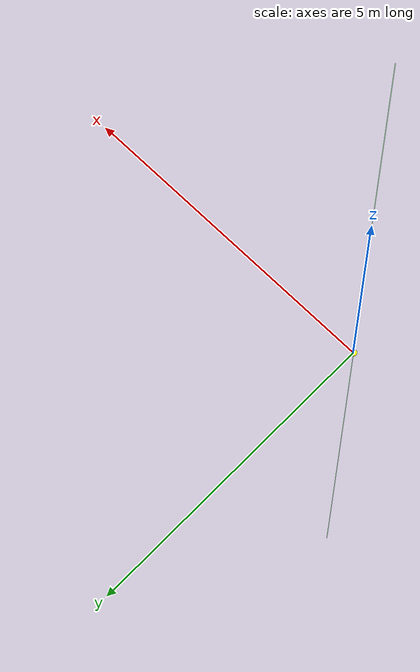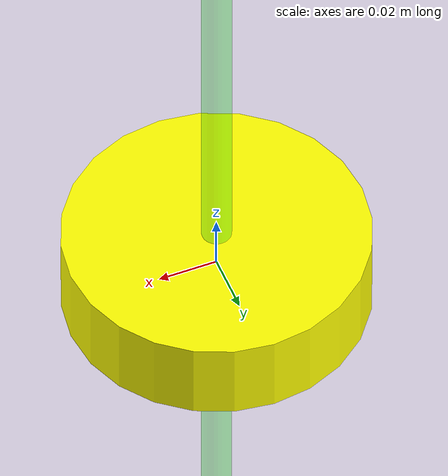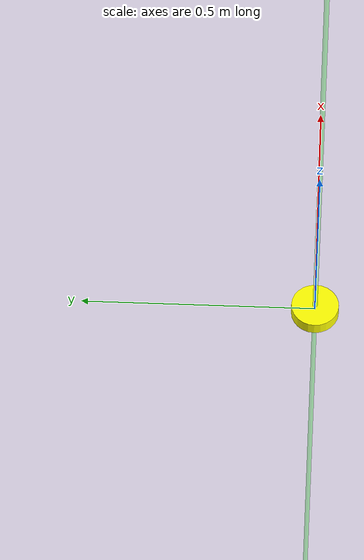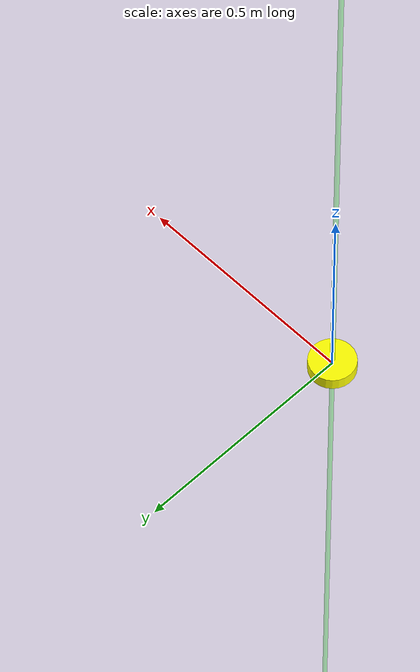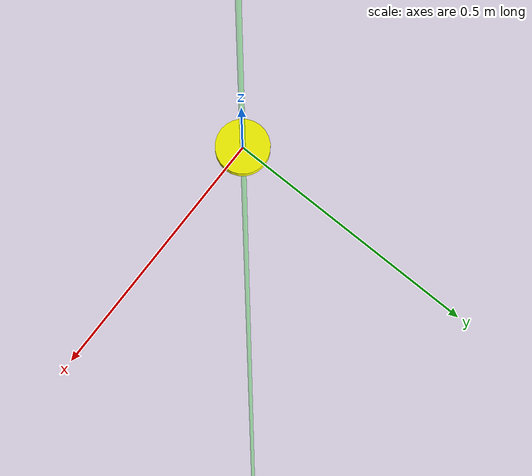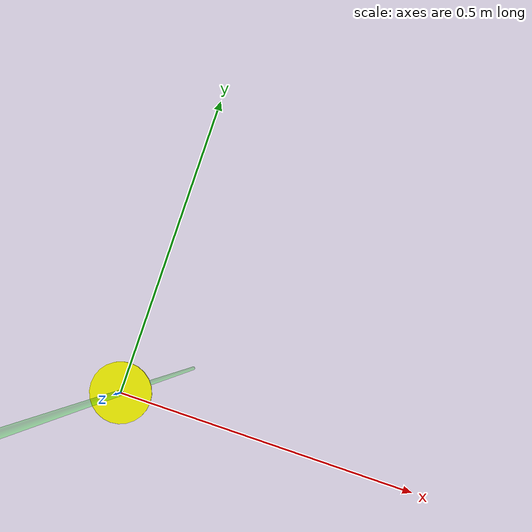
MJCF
<mujoco model="round_hand">
    <worldbody>
        <body name="round_gripper" pos="0 0 0">
            <site name="ft_frame" pos="0 0 0" size="0.01 0.01 0.01" rgba="1 0 0 1" type="sphere" group="1"/>
            <inertial pos="0 0 0" mass="3e-1" diaginertia="1e-2 1e-2 1e-2" />
            <!-- This site was added for visualization. -->
            <body name="eef" pos="0 0 0" quat="0.707105 0 0 -0.707105">
                <site name="grip_site" pos="0 0 0" size="0.01 0.01 0.01" rgba="1 0 0 0.5" type="sphere" group="1"/>
                <site name="ee_x" pos="0.1 0 0" size="0.005 .1"  quat="0.707105  0 0.707108 0 " rgba="1 0 0 0" type="cylinder" group="1"/>
                <site name="ee_y" pos="0 0.1 0" size="0.005 .1" quat="0.707105 0.707108 0 0" rgba="0 1 0 0" type="cylinder" group="1"/>
                <site name="ee_z" pos="0 0 0.1" size="0.005 .1" quat="1 0 0 0" rgba="0 0 1 0" type="cylinder" group="1"/>
                <!-- This site was added for visualization. -->
                <site name="grip_site_cylinder" pos="0 0 0" size="0.005 10" rgba="0 1 0 0.3" type="cylinder" group="1"/>

                <geom type="cylinder" group="1" pos="0 0 0" size="0.0508 0.015" name="wiping_surface2br" solimp="0.2 0.9 0.01" solmix="10000" solref="0.05 1" rgba="1 1 0 1" friction="0.001 0.005 0.0001"/>
            </body>
        </body>
    </worldbody>
    <sensor>
        <force name="force_ee" site="ft_frame"/>
        <torque name="torque_ee" site="ft_frame"/>
    </sensor>
</mujoco>
